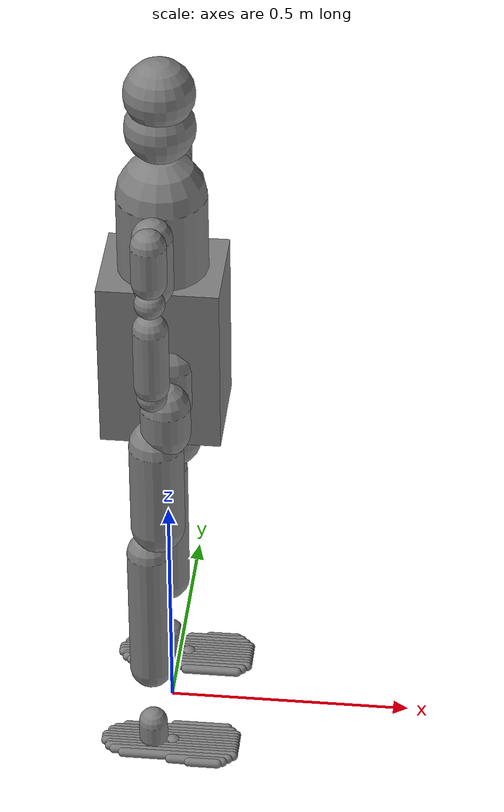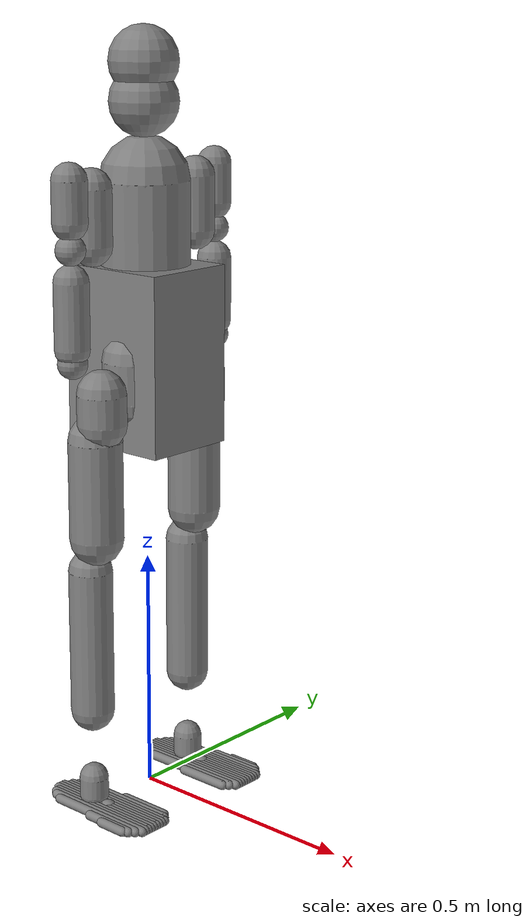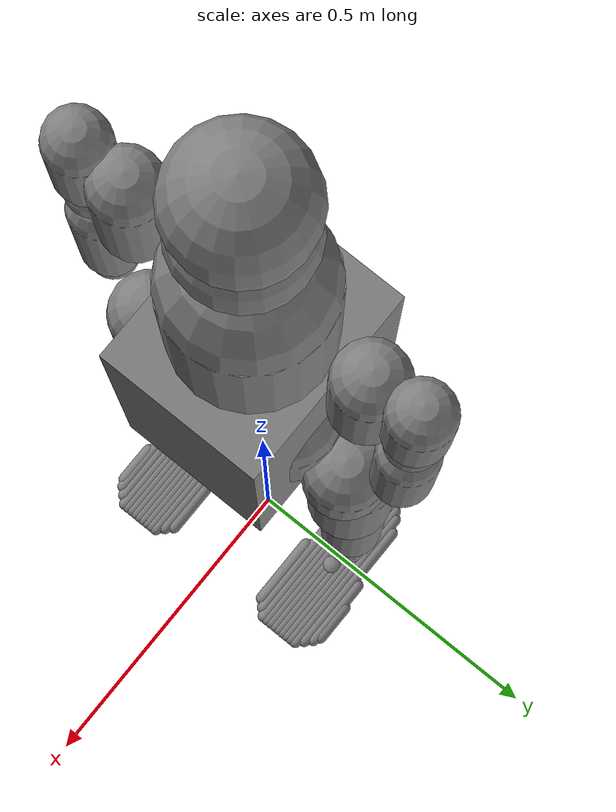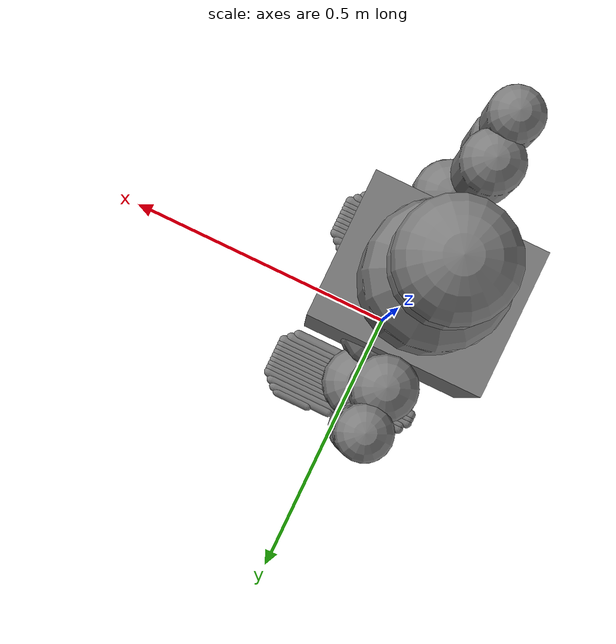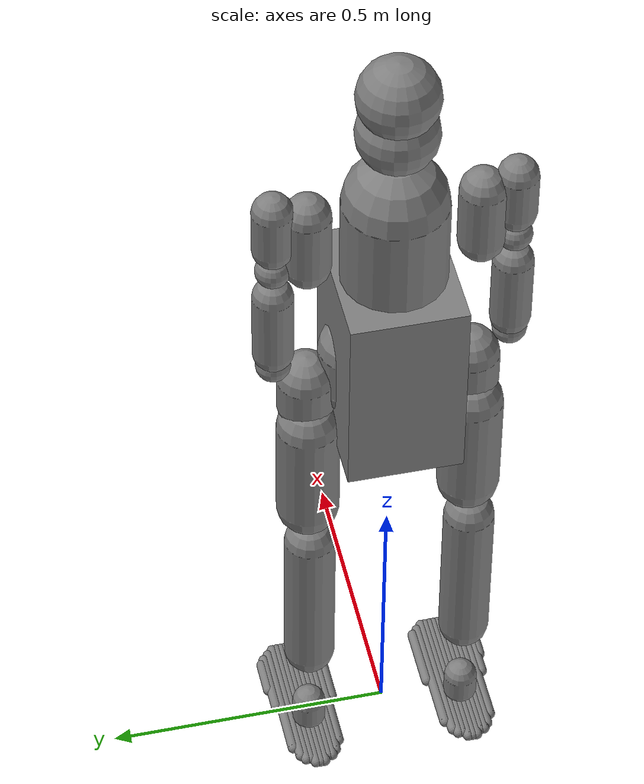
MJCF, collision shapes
<mujoco model="CB02_URDF_ECS_WK_0904B">
  <compiler angle="radian" meshdir="../meshes"/>

  <default>
    <default class="visual">
      <geom type="mesh" density="0" contype="0" conaffinity="0" group="2"/>
    </default>
    <default class="collision">
      <geom type="capsule" priority="1" condim="6" group="3"/>
      <default class="foot_capsule">
        <geom size="0.01"/>
      </default>
    </default>
    <joint damping="0.01" armature="0.01" frictionloss="0.01"/>
  </default>

  <asset>
    <mesh name="base_link" file="base_link.STL"/>
    <mesh name="left_leg_pelvic_pitch_link" file="left_leg_pelvic_pitch_link.STL"/>
    <mesh name="left_leg_pelvic_roll_link" file="left_leg_pelvic_roll_link.STL"/>
    <mesh name="left_leg_pelvic_yaw_link" file="left_leg_pelvic_yaw_link.STL"/>
    <mesh name="left_leg_knee_pitch_link" file="left_leg_knee_pitch_link.STL"/>
    <mesh name="left_leg_ankle_pitch_link" file="left_leg_ankle_pitch_link.STL"/>
    <mesh name="left_leg_ankle_roll_link" file="left_leg_ankle_roll_link.STL"/>
    <mesh name="right_leg_pelvic_pitch_link" file="right_leg_pelvic_pitch_link.STL"/>
    <mesh name="right_leg_pelvic_roll_link" file="right_leg_pelvic_roll_link.STL"/>
    <mesh name="right_leg_pelvic_yaw_link" file="right_leg_pelvic_yaw_link.STL"/>
    <mesh name="right_leg_knee_pitch_link" file="right_leg_knee_pitch_link.STL"/>
    <mesh name="right_leg_ankle_pitch_link" file="right_leg_ankle_pitch_link.STL"/>
    <mesh name="right_leg_ankle_roll_link" file="right_leg_ankle_roll_link.STL"/>
    <mesh name="waist_yaw_link" file="waist_yaw_link.STL"/>
    <mesh name="head_yaw_link" file="head_yaw_link.STL"/>
    <mesh name="head_pitch_link" file="head_pitch_link.STL"/>
    <mesh name="left_shoulder_pitch_link" file="left_shoulder_pitch_link.STL"/>
    <mesh name="left_shoulder_roll_link" file="left_shoulder_roll_link.STL"/>
    <mesh name="left_shoulder_yaw_link" file="left_shoulder_yaw_link.STL"/>
    <mesh name="left_elbow_pitch_link" file="left_elbow_pitch_link.STL"/>
    <mesh name="left_wrist_yaw_link" file="left_wrist_yaw_link.STL"/>
    <mesh name="right_shoulder_pitch_link" file="right_shoulder_pitch_link.STL"/>
    <mesh name="right_shoulder_roll_link" file="right_shoulder_roll_link.STL"/>
    <mesh name="right_shoulder_yaw_link" file="right_shoulder_yaw_link.STL"/>
    <mesh name="right_elbow_pitch_link" file="right_elbow_pitch_link.STL"/>
    <mesh name="right_wrist_yaw_link" file="right_wrist_yaw_link.STL"/>
  </asset>

  <worldbody>
    <light name="main_light" pos="0 -3 5" dir="0 1 -1" diffuse="1 1 1" specular="0.5 0.5 0.5" directional="true" castshadow="true" />
    <body name="base_link" pos="0 0 0.868" quat="1 0 0 0">
      <inertial pos="0.00090049 3.158E-05 0.059413" mass="4.478" diaginertia="0.013418 0.0086488 0.011258"/>
      <freejoint name="base_link"/>
      <site name="imu" pos="0.0 0 0.0" quat="1 0 0 0" size="0.078" rgba="255 0 0 1"/>
      <geom name="base_link_visual"       class="visual" mesh="base_link" rgba="0.79216 0.81961 0.93333 1"/>
      <geom name="base_link_visual_dummy" class="visual" mesh="base_link" rgba="0.79216 0.81961 0.93333 1"/>
      <geom name="base_link_collision"    class="collision" type="box" size="0.12 0.10 0.18" pos="0 0 0.06"/>

      <!-- ===== LEFT LEG ===== -->
      <body name="left_leg_pelvic_pitch_link" pos="0 0.061 0.0575">
        <inertial pos="0.007392 0.0735787 -0.0476224" quat="0.407442 0.910672 -0.0585159 0.0352733" mass="2.16712" diaginertia="0.00390966 0.00329264 0.00186876"/>
        <joint name="left_leg_pelvic_pitch_joint" pos="0 0 0" axis="0 1 0" range="-1.9199 1.5708"/>
        <geom class="visual" mesh="left_leg_pelvic_pitch_link" rgba="0.792157 0.819608 0.933333 1"/>
        <geom name="left_hip_collision" class="collision" size="0.06" fromto="0.02 0 0 0.02 0 -0.08"/>
        <body name="left_leg_pelvic_roll_link" pos="-0.0028 0.0815 -0.055">
          <inertial pos="0.0317977 1.95e-05 -0.0477515" quat="0.98688 -0.00194293 -0.161011 -0.0118421" mass="0.494852" diaginertia="0.00116108 0.00109256 0.000369379"/>
          <joint name="left_leg_pelvic_roll_joint" pos="0 0 0" axis="1 0 0" range="-0.17453 1.5708"/>
          <geom class="visual" mesh="left_leg_pelvic_roll_link" rgba="0.792157 0.819608 0.933333 1"/>
          <geom name="left_hip_roll_collision" class="collision" size="0.05" fromto="0.02 0 0 0.02 0 -0.06"/>
          <body name="left_leg_pelvic_yaw_link" pos="0 0 -0.0975">
            <inertial pos="-0.00776171 0.00252331 -0.166394" quat="0.595531 -0.03466 -0.013831 0.802465" mass="3.67359" diaginertia="0.0549996 0.0539441 0.00435641"/>
            <joint name="left_leg_pelvic_yaw_joint" pos="0 0 0" axis="0 0 1" range="-1.5708 1.5708"/>
            <geom class="visual" mesh="left_leg_pelvic_yaw_link" rgba="0.792157 0.819608 0.933333 1"/>
            <geom name="left_thigh_collision" class="collision" size="0.055" fromto="0 0 0 0 0 -0.20"/>
            <body name="left_leg_knee_pitch_link" pos="-0.02 0 -0.2735">
              <inertial pos="0.00342465 -0.00267008 -0.196705" quat="0.672917 -0.0298664 -0.000587356 0.739114" mass="3.70154" diaginertia="0.0426134 0.0424999 0.00382652"/>
              <joint name="left_leg_knee_pitch_joint" pos="0 0 0" axis="0 1 0" range="0 2.5307"/>
              <geom class="visual" mesh="left_leg_knee_pitch_link" rgba="0.792157 0.819608 0.933333 1"/>
              <geom name="left_shin_collision" class="collision" size="0.045" fromto="0 0 0 0 0 -0.30"/>
              <body name="left_leg_ankle_pitch_link" pos="0 0 -0.453">
                <inertial pos="0 -1.93e-06 0" quat="0.707107 0.707107 0 0" mass="0.0573757" diaginertia="1.172e-05 1.044e-05 9.47e-06"/>
                <joint name="left_leg_ankle_pitch_joint" pos="0 0 0" axis="0 1 0" range="-0.87266 0.50614"/>
                <geom class="visual" mesh="left_leg_ankle_pitch_link" rgba="0.792157 0.819608 0.933333 1"/>
                <geom name="left_ankle_collision" class="collision" size="0.03" fromto="0 0 0 0 0 -0.04"/>
                <body name="left_leg_ankle_roll_link">
                  <inertial pos="0.0187444 0.00117256 -0.0409485" quat="-0.0190107 0.668942 -0.0359937 0.742199" mass="0.882585" diaginertia="0.0045177 0.00422814 0.00101679"/>
                  <joint name="left_leg_ankle_roll_joint" pos="0 0 0" axis="1 0 0" range="-0.50614 0.50614"/>
                  <geom class="visual" mesh="left_leg_ankle_roll_link" rgba="0.792157 0.819608 0.933333 1"/>
                  <!-- Y=0 中心 -->
                  <geom name="left_foot1_collision"  class="foot_capsule" fromto="-0.10  0.000 -0.055  0.17  0.000 -0.055"/>
                  <geom name="left_foot2_collision"  class="foot_capsule" fromto="-0.10  0.008 -0.055  0.17  0.008 -0.055"/>
                  <geom name="left_foot3_collision"  class="foot_capsule" fromto="-0.10 -0.008 -0.055  0.17 -0.008 -0.055"/>
                  <geom name="left_foot4_collision"  class="foot_capsule" fromto="-0.09  0.016 -0.055  0.17  0.016 -0.055"/>
                  <geom name="left_foot5_collision"  class="foot_capsule" fromto="-0.09 -0.016 -0.055  0.17 -0.016 -0.055"/>
                  <geom name="left_foot6_collision"  class="foot_capsule" fromto="-0.09  0.024 -0.055  0.17  0.024 -0.055"/>
                  <geom name="left_foot7_collision"  class="foot_capsule" fromto="-0.09 -0.024 -0.055  0.17 -0.024 -0.055"/>
                  <geom name="left_foot8_collision"  class="foot_capsule" fromto="-0.08  0.032 -0.055  0.17  0.032 -0.055"/>
                  <geom name="left_foot9_collision"  class="foot_capsule" fromto="-0.08 -0.032 -0.055  0.17 -0.032 -0.055"/>
                  <!-- Y=±0.042 (脚跟开始向内收) -->
                  <geom name="left_foot10_collision" class="foot_capsule" fromto="-0.06  0.042 -0.055  0.16  0.042 -0.055"/>
                  <geom name="left_foot11_collision" class="foot_capsule" fromto="-0.06 -0.042 -0.055  0.16 -0.042 -0.055"/>
                  <!-- Y=±0.052 (边缘, 仅前脚掌) -->
                  <geom name="left_foot12_collision" class="foot_capsule" fromto="0.04  0.052 -0.055  0.15  0.052 -0.055"/>
                  <geom name="left_foot13_collision" class="foot_capsule" fromto="0.04 -0.052 -0.055  0.15 -0.052 -0.055"/>
                  <!-- Y=±0.058 (最边缘, 仅趾部) -->
                  <geom name="left_foot14_collision" class="foot_capsule" fromto="0.08  0.058 -0.055  0.14  0.058 -0.055"/>
                  <site name="left_foot" pos="0.04 0 -0.06" size="0.02"/>
                </body>
              </body>
            </body>
          </body>
        </body>
      </body>

      <!-- ===== RIGHT LEG ===== -->
      <body name="right_leg_pelvic_pitch_link" pos="0 -0.061 0.0575">
        <inertial pos="0.00736841 -0.0735154 -0.0475662" quat="0.910954 0.407365 -0.033918 0.0553693" mass="2.1692" diaginertia="0.00392629 0.0033128 0.00187006"/>
        <joint name="right_leg_pelvic_pitch_joint" pos="0 0 0" axis="0 1 0" range="-1.9199 1.5708"/>
        <geom class="visual" mesh="right_leg_pelvic_pitch_link" rgba="0.792157 0.819608 0.933333 1"/>
        <geom name="right_hip_collision" class="collision" size="0.06" fromto="0.02 0 0 0.02 0 -0.08"/>
        <body name="right_leg_pelvic_roll_link" pos="-0.0028 -0.0815 -0.055">
          <inertial pos="0.0317977 1.95e-05 -0.0477515" quat="0.98688 -0.00194293 -0.161011 -0.0118421" mass="0.494852" diaginertia="0.00116108 0.00109256 0.000369379"/>
          <joint name="right_leg_pelvic_roll_joint" pos="0 0 0" axis="1 0 0" range="-1.5708 0.17453"/>
          <geom class="visual" mesh="right_leg_pelvic_roll_link" rgba="0.792157 0.819608 0.933333 1"/>
          <geom name="right_hip_roll_collision" class="collision" size="0.05" fromto="0.02 0 0 0.02 0 -0.06"/>
          <body name="right_leg_pelvic_yaw_link" pos="0 0 -0.0975">
            <inertial pos="-0.00780257 -0.00226954 -0.163533" quat="0.799373 -0.0122552 -0.0329539 0.599806" mass="3.75132" diaginertia="0.0570832 0.055993 0.00452655"/>
            <joint name="right_leg_pelvic_yaw_joint" pos="0 0 0" axis="0 0 1" range="-1.5708 1.5708"/>
            <geom class="visual" mesh="right_leg_pelvic_yaw_link" rgba="0.792157 0.819608 0.933333 1"/>
            <geom name="right_thigh_collision" class="collision" size="0.055" fromto="0 0 0 0 0 -0.20"/>
            <body name="right_leg_knee_pitch_link" pos="-0.02 0 -0.2735">
              <inertial pos="0.0034152 0.0026614 -0.19654" quat="0.741493 -0.000441867 -0.029922 0.670293" mass="3.705" diaginertia="0.0425043 0.0423949 0.00383188"/>
              <joint name="right_leg_knee_pitch_joint" pos="0 0 0" axis="0 1 0" range="0 2.5307"/>
              <geom class="visual" mesh="right_leg_knee_pitch_link" rgba="0.79216 0.81961 0.93333 1"/>
              <geom name="right_shin_collision" class="collision" size="0.045" fromto="0 0 0 0 0 -0.30"/>
              <body name="right_leg_ankle_pitch_link" pos="0 0 -0.453">
                <inertial pos="0 -1.93e-06 0" quat="0.707107 0.707107 0 0" mass="0.0573757" diaginertia="1.172e-05 1.044e-05 9.47e-06"/>
                <joint name="right_leg_ankle_pitch_joint" pos="0 0 0" axis="0 1 0" range="-0.87266 0.50614"/>
                <geom class="visual" mesh="right_leg_ankle_pitch_link" rgba="0.792157 0.819608 0.933333 1"/>
                <geom name="right_ankle_collision" class="collision" size="0.03" fromto="0 0 0 0 0 -0.04"/>
                <body name="right_leg_ankle_roll_link">
                  <inertial pos="0.0195121 -0.00117074 -0.0336112" quat="0.011605 0.679583 0.0284444 0.732955" mass="0.882445" diaginertia="0.0047921 0.00448529 0.00114232"/>
                  <joint name="right_leg_ankle_roll_joint" pos="0 0 0" axis="1 0 0" range="-0.50614 0.50614"/>
                  <geom class="visual" mesh="right_leg_ankle_roll_link" rgba="0.792157 0.819608 0.933333 1"/>
                  <!--
                    足部14胶囊碰撞体 — 右脚=左脚Y镜像
                  -->
                  <!-- Y=0 中心 -->
                  <geom name="right_foot1_collision"  class="foot_capsule" fromto="-0.10  0.000 -0.055  0.17  0.000 -0.055"/>
                  <!-- Y=±0.008 (右脚正Y=外侧, 负Y=内侧; 此处与左脚Y符号相反即镜像) -->
                  <geom name="right_foot2_collision"  class="foot_capsule" fromto="-0.10 -0.008 -0.055  0.17 -0.008 -0.055"/>
                  <geom name="right_foot3_collision"  class="foot_capsule" fromto="-0.10  0.008 -0.055  0.17  0.008 -0.055"/>
                  <geom name="right_foot4_collision"  class="foot_capsule" fromto="-0.09 -0.016 -0.055  0.17 -0.016 -0.055"/>
                  <geom name="right_foot5_collision"  class="foot_capsule" fromto="-0.09  0.016 -0.055  0.17  0.016 -0.055"/>
                  <geom name="right_foot6_collision"  class="foot_capsule" fromto="-0.09 -0.024 -0.055  0.17 -0.024 -0.055"/>
                  <geom name="right_foot7_collision"  class="foot_capsule" fromto="-0.09  0.024 -0.055  0.17  0.024 -0.055"/>
                  <geom name="right_foot8_collision"  class="foot_capsule" fromto="-0.08 -0.032 -0.055  0.17 -0.032 -0.055"/>
                  <geom name="right_foot9_collision"  class="foot_capsule" fromto="-0.08  0.032 -0.055  0.17  0.032 -0.055"/>
                  <geom name="right_foot10_collision" class="foot_capsule" fromto="-0.06 -0.042 -0.055  0.16 -0.042 -0.055"/>
                  <geom name="right_foot11_collision" class="foot_capsule" fromto="-0.06  0.042 -0.055  0.16  0.042 -0.055"/>
                  <geom name="right_foot12_collision" class="foot_capsule" fromto="0.04 -0.052 -0.055  0.15 -0.052 -0.055"/>
                  <geom name="right_foot13_collision" class="foot_capsule" fromto="0.04  0.052 -0.055  0.15  0.052 -0.055"/>
                  <geom name="right_foot14_collision" class="foot_capsule" fromto="0.08 -0.058 -0.055  0.14 -0.058 -0.055"/>
                  <site name="right_foot" pos="0.04 0 -0.06" size="0.02"/>
                </body>
              </body>
            </body>
          </body>
        </body>
      </body>

      <!-- ===== WAIST + HEAD ===== -->
      <body name="waist_yaw_link" pos="0 0 0.15424">
        <inertial pos="-0.0169696 7.138e-05 0.184928" quat="0.999672 0.00251467 0.0247215 0.00614013" mass="9.1035" diaginertia="0.105062 0.096607 0.0540018"/>
        <joint name="waist_yaw_joint" pos="0 0 0" axis="0 0 1" range="-1.5708 1.5708"/>
        <geom class="visual" mesh="waist_yaw_link" rgba="0.792157 0.819608 0.933333 1"/>
        <geom name="torso_collision" class="collision" size="0.09" fromto="0 0 0.08 0 0 0.25"/>
        <body name="head_yaw_link" pos="0 0 0.3623">
          <inertial pos="-0.00013343 0.00165492 0.0435103" quat="0.906391 0.418493 0.0538848 -0.0203793" mass="0.469391" diaginertia="0.000162364 0.000140047 0.000124899"/>
          <joint name="head_yaw_joint" pos="0 0 0" axis="0 0 1" range="-1.5708 1.5708"/>
          <geom class="visual" mesh="head_yaw_link" rgba="0.792157 0.819608 0.933333 1"/>
          <geom name="head_yaw_collision" class="collision" type="sphere" size="0.07" pos="0 0 0.04"/>
          <body name="head_pitch_link" pos="0 0 0.046">
            <inertial pos="0.0286407 -0.00329851 0.0696818" quat="0.637964 0.244314 0.0759975 0.726317" mass="0.473264" diaginertia="0.00119777 0.00115729 0.000841827"/>
            <joint name="head_pitch_joint" pos="0 0 0" axis="0 1 0" range="-0.2618 0.5236"/>
            <geom class="visual" mesh="head_pitch_link" rgba="0.792157 0.819608 0.933333 1"/>
            <geom name="head_pitch_collision" class="collision" type="sphere" size="0.07" pos="0 0 0.07"/>
          </body>
        </body>

        <!-- ===== LEFT ARM ===== -->
        <body name="left_shoulder_pitch_link" pos="0 0.145 0.2673">
          <inertial pos="0.00759901 0.0512615 8.961e-05" quat="0.328695 0.616506 -0.35051 0.623717" mass="0.649305" diaginertia="0.000372057 0.0003106 0.000238063"/>
          <joint name="left_shoulder_pitch_joint" pos="0 0 0" axis="0 1 0" range="-3.1416 1.0472"/>
          <geom class="visual" mesh="left_shoulder_pitch_link" rgba="0.792157 0.819608 0.933333 1"/>
          <geom name="left_upper_arm_collision" class="collision" size="0.04" fromto="0 0 -0.02 0 0 -0.13"/>
          <body name="left_shoulder_roll_link" pos="0 0.057 0">
            <inertial pos="1.11e-06 -0.00020652 -0.0859753" quat="0.707636 -0.00264697 -0.00929817 0.706511" mass="0.609838" diaginertia="0.000918836 0.000781359 0.000292025"/>
            <joint name="left_shoulder_roll_joint" pos="0 0 0" axis="1 0 0" range="-0.3491 3.1416"/>
            <geom class="visual" mesh="left_shoulder_roll_link" rgba="0.792157 0.819608 0.933333 1"/>
            <geom name="left_shoulder_roll_collision" class="collision" size="0.035" fromto="0 0 0 0 0 -0.08"/>
            <body name="left_shoulder_yaw_link" pos="0 0 -0.1315">
              <inertial pos="2.838e-05 0.0200011 -0.0278826" quat="0.971999 -0.233099 0.00848888 0.0284864" mass="0.0788364" diaginertia="7.36273e-05 7.1718e-05 1.83447e-05"/>
              <joint name="left_shoulder_yaw_joint" pos="0 0 0" axis="0 0 1" range="-1.5708 1.5708"/>
              <geom class="visual" mesh="left_shoulder_yaw_link" rgba="0.792157 0.819608 0.933333 1"/>
              <geom name="left_shoulder_yaw_collision" class="collision" type="sphere" size="0.03"/>
              <body name="left_elbow_pitch_link" pos="0 0 -0.061">
                <inertial pos="-0.00050872 -0.00152061 -0.0445354" quat="0.996287 -0.0213732 -0.000680601 -0.0833931" mass="1.01311" diaginertia="0.0025792 0.00249642 0.000284103"/>
                <joint name="left_elbow_pitch_joint" pos="0 0 0" axis="0 1 0" range="-1.8675 0"/>
                <geom class="visual" mesh="left_elbow_pitch_link" rgba="0.792157 0.819608 0.933333 1"/>
                <geom name="left_forearm_collision" class="collision" size="0.035" fromto="0 0 0 0 0 -0.13"/>
                <body name="left_wrist_yaw_link" pos="0 0 -0.131">
                  <inertial pos="0.00066742 -0.00325051 -0.0313998" quat="0.691332 0.00526097 -0.011877 0.72242" mass="0.124406" diaginertia="0.000136166 0.000132622 2.10627e-05"/>
                  <joint name="left_wrist_yaw_joint" pos="0 0 0" axis="0 0 1" range="-1.5708 1.5708"/>
                  <geom class="visual" mesh="left_wrist_yaw_link" rgba="0.792157 0.819608 0.933333 1"/>
                  <geom name="left_hand_collision" class="collision" type="sphere" size="0.03" pos="0 0 -0.03"/>
                </body>
              </body>
            </body>
          </body>
        </body>

        <!-- ===== RIGHT ARM ===== -->
        <body name="right_shoulder_pitch_link" pos="0 -0.145 0.2673">
          <inertial pos="0.00755271 -0.0511139 4.648e-05" quat="0.615388 0.340055 -0.614594 0.357678" mass="0.652096" diaginertia="0.000378542 0.000316381 0.000241007"/>
          <joint name="right_shoulder_pitch_joint" pos="0 0 0" axis="0 1 0" range="-3.1416 1.0472"/>
          <geom class="visual" mesh="right_shoulder_pitch_link" rgba="0.792157 0.819608 0.933333 1"/>
          <geom name="right_upper_arm_collision" class="collision" size="0.04" fromto="0 0 -0.02 0 0 -0.13"/>
          <body name="right_shoulder_roll_link" pos="0 -0.057 0">
            <inertial pos="1.294e-05 0.00019306 -0.085944" quat="0.707137 -0.0100122 -0.00276305 0.707" mass="0.610511" diaginertia="0.000919856 0.00078203 0.000292564"/>
            <joint name="right_shoulder_roll_joint" pos="0 0 0" axis="1 0 0" range="-3.1416 0.3491"/>
            <geom class="visual" mesh="right_shoulder_roll_link" rgba="0.792157 0.819608 0.933333 1"/>
            <geom name="right_shoulder_roll_collision" class="collision" size="0.035" fromto="0 0 0 0 0 -0.08"/>
            <body name="right_shoulder_yaw_link" pos="0 0 -0.1315">
              <inertial pos="-2.838e-05 -0.020001 -0.027883" quat="0.971999 0.233099 -0.00848888 0.0284864" mass="0.078836" diaginertia="7.36273e-05 7.1718e-05 1.83447e-05"/>
              <joint name="right_shoulder_yaw_joint" pos="0 0 0" axis="0 0 1" range="-1.5708 1.5708"/>
              <geom class="visual" mesh="right_shoulder_yaw_link" rgba="0.79216 0.81961 0.93333 1"/>
              <geom name="right_shoulder_yaw_collision" class="collision" type="sphere" size="0.03"/>
              <body name="right_elbow_pitch_link" pos="0 0 -0.061">
                <inertial pos="-0.0002278 0.00151852 -0.044548" quat="0.997639 0.0217184 0.00469568 0.0649798" mass="1.01349" diaginertia="0.00257925 0.00249811 0.000284317"/>
                <joint name="right_elbow_pitch_joint" pos="0 0 0" axis="0 1 0" range="-1.8675 0"/>
                <geom class="visual" mesh="right_elbow_pitch_link" rgba="0.792157 0.819608 0.933333 1"/>
                <geom name="right_forearm_collision" class="collision" size="0.035" fromto="0 0 0 0 0 -0.13"/>
                <body name="right_wrist_yaw_link" pos="0 0 -0.128">
                  <inertial pos="-0.00066742 0.00325051 -0.0343998" quat="0.691332 -0.00526097 0.011877 0.72242" mass="0.124406" diaginertia="0.000136166 0.000132622 2.10627e-05"/>
                  <joint name="right_wrist_yaw_joint" pos="0 0 0" axis="0 0 1" range="-1.5708 1.5708"/>
                  <geom class="visual" mesh="right_wrist_yaw_link" rgba="0.792157 0.819608 0.933333 1"/>
                  <geom name="right_hand_collision" class="collision" type="sphere" size="0.03" pos="0 0 -0.03"/>
                </body>
              </body>
            </body>
          </body>
        </body>
      </body>
    </body>
  </worldbody>

  <sensor>
    <gyro name="imu_ang_vel" site="imu"/>
    <velocimeter name="imu_lin_vel" site="imu"/>
    <framequat name="imu_framequat" objtype="site" objname="imu"/>
  </sensor>

</mujoco>
